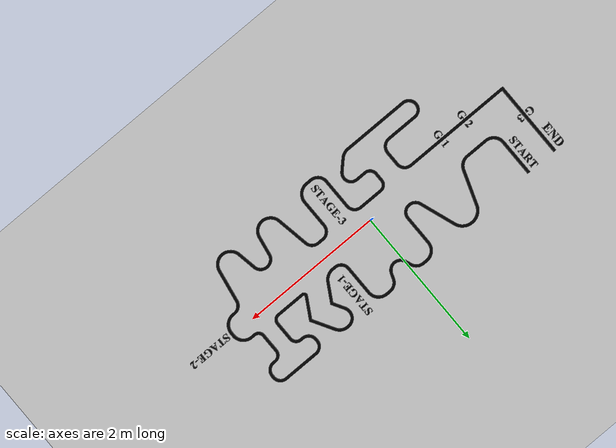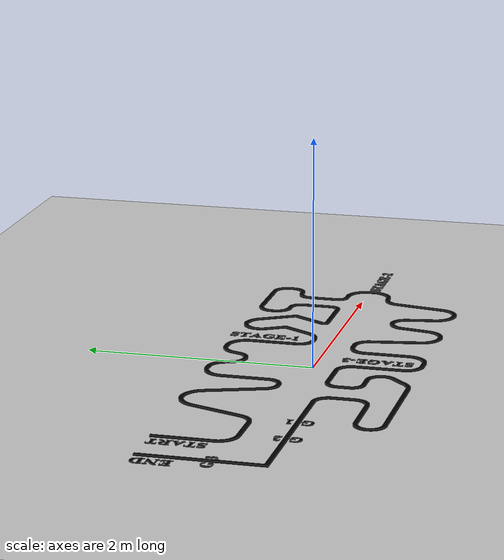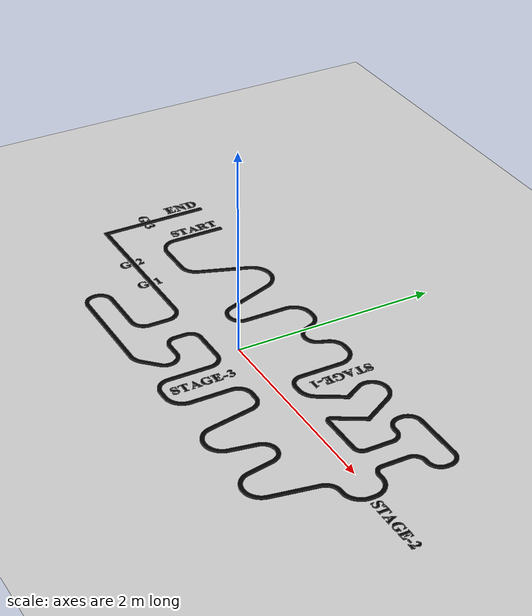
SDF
<?xml version="1.0" ?>
<sdf version="1.6">
  <world name="empty">

    <!-- Physics and plugins -->
    <physics name="1ms" type="ignored">
      <max_step_size>0.001</max_step_size>
      <real_time_factor>1.0</real_time_factor>
    </physics>
    <plugin filename="gz-sim-physics-system" name="gz::sim::systems::Physics"/>
    <plugin filename="gz-sim-user-commands-system" name="gz::sim::systems::UserCommands"/>
    <plugin filename="gz-sim-scene-broadcaster-system" name="gz::sim::systems::SceneBroadcaster"/>
    <plugin filename="gz-sim-contact-system" name="gz::sim::systems::Contact"/>
    <plugin filename="gz-sim-sensors-system" name="gz::sim::systems::Sensors">
      <render_engine>ogre2</render_engine>
    </plugin>
    <plugin filename="gz-sim-imu-system" name="gz::sim::systems::Imu"/>

    <!-- Lighting -->
    <light type="directional" name="sun">
      <cast_shadows>false</cast_shadows>
      <pose>0 0 10 0 0 0</pose>
      <diffuse>0.8 0.8 0.8 1</diffuse>
      <specular>0.2 0.2 0.2 1</specular>
      <attenuation>
        <range>1000</range>
        <constant>0.9</constant>
        <linear>0.01</linear>
        <quadratic>0.001</quadratic>
      </attenuation>
      <direction>-0.5 0.1 -0.9</direction>
    </light>

    <!-- Environment -->
    <gravity>0 0 -9.8</gravity>
    <magnetic_field>5.5645e-06 2.28758e-05 -4.23884e-05</magnetic_field>
    <atmosphere type="adiabatic"/>
    <scene>
      <ambient>0.4 0.4 0.4 1</ambient>
      <background>0.7 0.7 0.7 1</background>
      <shadows>true</shadows>
    </scene>

    <!-- Ground Plane -->
    <model name="ground_plane">
      <static>true</static>
      <link name="link">
        <collision name="collision">
          <geometry>
            <plane>
              <normal>0 0 1</normal>
              <size>100 100</size>
            </plane>
          </geometry>
          <surface>
            <friction>
              <ode><mu>50</mu></ode>
            </friction>
            <bounce/>
            <contact/>
          </surface>
        </collision>
        <visual name="visual">
          <geometry>
            <plane>
              <normal>0 0 1</normal>
              <size>100 100</size>
            </plane>
          </geometry>
          <material>
            <ambient>0.8 0.8 0.8 1</ambient>
            <diffuse>0.8 0.8 0.8 1</diffuse>
            <specular>0.8 0.8 0.8 1</specular>
          </material>
        </visual>
      </link>
    </model>

    <model name="arena">
  <static>true</static>
  <pose>0 0 -0.008 1.570795 0.0 0.0</pose>
  <link name="link">
  <inertial>
      <mass>1000</mass>
      <inertia>
        <ixx>1</ixx>
        <iyy>1</iyy>
        <izz>1</izz>
      </inertia>
    </inertial>
    <visual name="visual">
      <geometry>
        <mesh>
          <uri>file:///home/hephan/lfr_ws/src/arena-robot-simulation/mec_mobile_description/meshes/arena/arena.stl</uri>   <!-- use relative or absolute path -->
          <scale>0.001 0.001 0.001</scale> <!-- adjust scaling if needed -->
        </mesh>
      </geometry>
      <material>
        <ambient>0.0 0.0 0.0 1</ambient>
        <diffuse>0.0 0.0 0.0 1</diffuse>
      </material>
    </visual>

    <collision name="collision">
      <geometry>
        <mesh>
          <uri>file:///home/hephan/lfr_ws/src/arena-robot-simulation/mec_mobile_description/meshes/arena/arena.stl</uri>
          <scale>0.001 0.001 0.001</scale>
        </mesh>
      </geometry>
    </collision>
  </link>
</model>

  </world>
</sdf>
